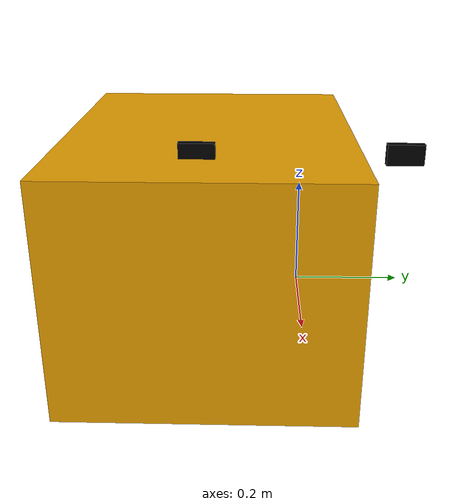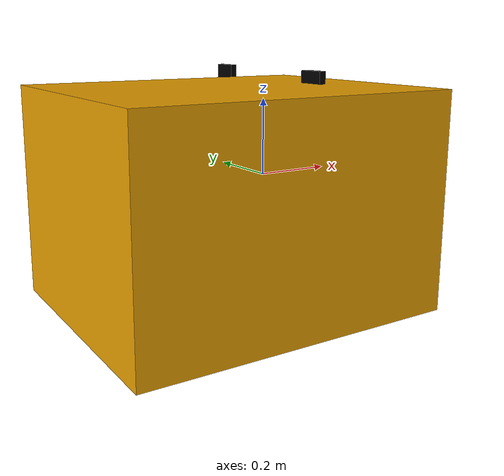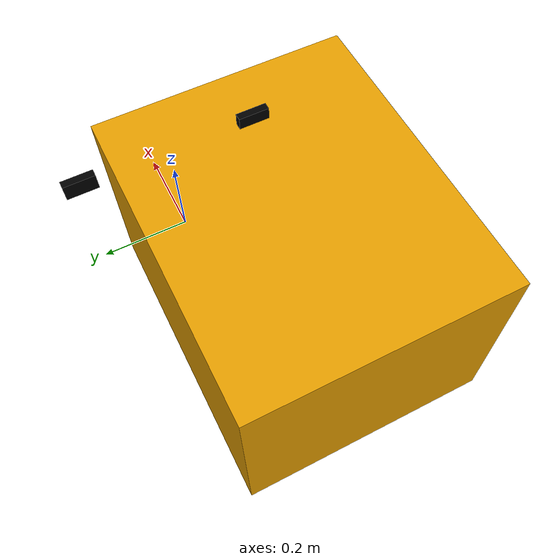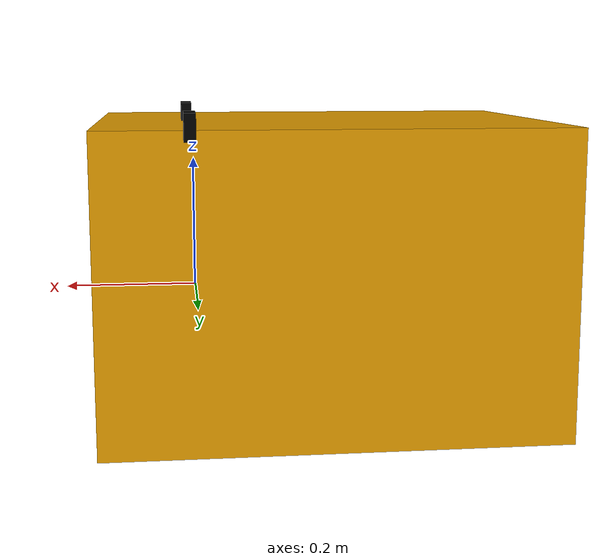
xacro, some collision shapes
<?xml version="1.0"?>
<robot name="test_robot" xmlns:xacro="http://www.ros.org/wiki/xacro">

<link name="base_link">

<visual>
    <origin xyz="-0.21971 -0.18098 0" rpy="0 0 0"/>
    <geometry>
    <mesh filename="package://nyurdt_localization/model/robot.stl"
    scale="0.001 0.001 0.001"/>
    </geometry>
</visual>

<collision>
    <origin xyz="-0.21971 -0.18098 0" rpy="0 0 0"/>
    <geometry>

    <box size="0.74784 0.60788 0.5"/>
    </geometry>
</collision>

<inertial>
    <origin xyz="0 0 0"/>
    <mass value="20"/>
    <inertia ixx="1" ixy="0" ixz="0"
    iyy="1" iyz="0"
    izz="1"/>
</inertial>

</link>

<!-- camera file -->
<xacro:include filename="camera.xacro" />
<xacro:property name="x" value=".017"/>
<xacro:property name="y" value=".07"/>
<xacro:property name="z" value=".04"/>

<xacro:camera parent="base_link" pos="left" size_x="${x}" size_y="${y}" size_z="${z}">
    <origin xyz="0.00792 0.195 0.26" rpy="0 0 0"/>
</xacro:camera>

<xacro:camera parent="base_link" pos="right" size_x="${x}" size_y="${y}" size_z="${z}">
    <origin xyz="0.00792 -0.195 0.26" rpy="0 0 0"/>
</xacro:camera>

<!-- camera file -->
<xacro:include filename="camera.xacro" />
<xacro:property name="x" value=".037"/>
<xacro:property name="y" value=".037"/>
<xacro:property name="z" value=".04"/>

<xacro:camera parent="base_link" pos="front" size_x="${x}" size_y="${y}" size_z="${z}">
    <origin xyz="0 0 0" rpy="0 0 0"/>
</xacro:camera>

<xacro:camera parent="base_link" pos="back" size_x="${x}" size_y="${y}" size_z="${z}">
    <origin xyz="0 0 0" rpy="0 0 0"/>
</xacro:camera>

</robot>

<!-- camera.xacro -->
<!-- Author: Mandy Wang-->

<robot xmlns:xacro="http://www.ros.org/wiki/xacro">

    <xacro:macro name="camera" params="parent pos size_x size_y size_z *origin">
    <!-- Pi constant -->
    <xacro:property name="pi_cam" value="3.14159265"/>

        <link name="${pos}_camera">
            <visual>
                <geometry>
                    <box size="${size_x} ${size_y} ${size_z}"/>
                </geometry>
                <material name="black">
                    <color rgba="0 0 0 1"/>
                </material>
            </visual>
        </link>

        <joint name="${pos}_camera_joint" type="fixed">
            <parent link="${parent}"/>
            <child link="${pos}_camera"/>
            <xacro:insert_block name="origin"/>
        </joint>
        <!--vision frame used by image and tf topics-->
        <link name="${pos}_camera_optical_frame_link"></link>

        <joint name="${pos}_camera_optical_frame_joint" type="fixed">
            <parent link="${pos}_camera"/>
            <child link="${pos}_camera_optical_frame_link"/>
            <origin xyz="0 0 0" rpy="${-pi_cam/2} 0 ${-pi_cam/2}"/>
        </joint>
    </xacro:macro>

</robot>
